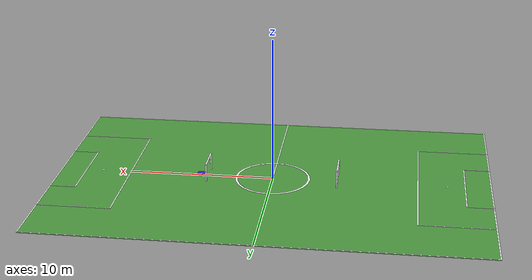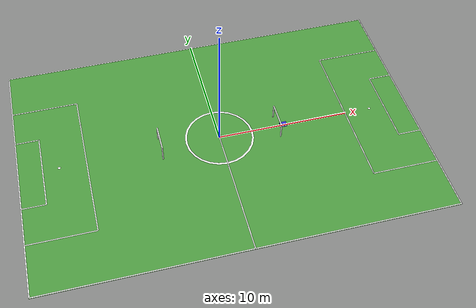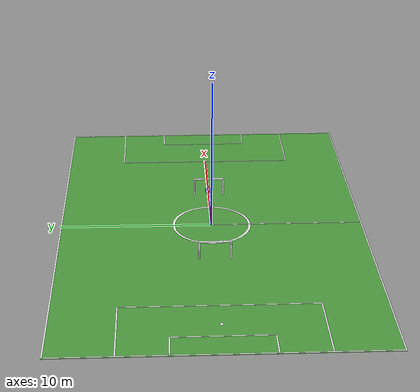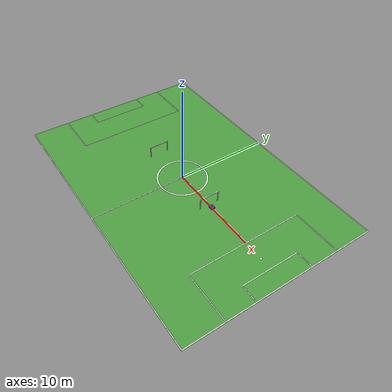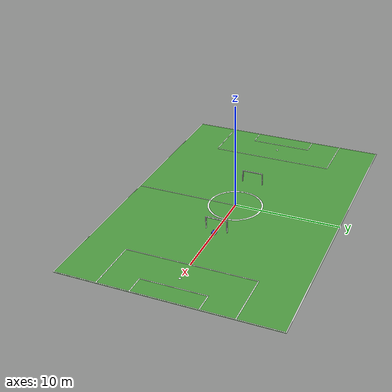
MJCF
<mujoco model="robosoccer">
  <compiler angle="degree" autolimits="true"/>
  <option timestep="0.002" gravity="0 0 -9.81" integrator="RK4"/>

  <asset>
    <texture name="grass_tex" type="2d" file="assets/grass.png"/>
    <material name="grass_mat" texture="grass_tex" texrepeat="50 35" rgba="1 1 1 1" emission="0.15"/>
    <material name="line_white" rgba="1 1 1 1"/>
    <material name="ball_mat" rgba="1 1 1 1" specular="0.2" shininess="0.1"/>
  </asset>

  <worldbody>
    <camera name="field_cam" pos="0 -30 40" quat="0.7 0 0 0.7"/>
    <light name="top" pos="0 0 30"/>

<!-- 1) Hard collision ground (invisible) -->
<geom name="ground_collision" type="plane" pos="0 0 0" size="15 10 1"
      rgba="1 1 1 0"
      condim="3"
      friction="1.0 0.002 0.004"
      priority="2"
      solref="0.01 1.5"
      solimp="0.9 0.95 0.001"/>

<!-- 2) Visual grass decal (no collisions), lifted to avoid z-fighting -->
<geom name="field_visual" type="plane" pos="0 0 0.004" size="15 10 1"
      material="grass_mat"
      contype="0" conaffinity="0"
      priority="1"/>

    <!-- ================= FIELD LINES (non-colliding) ================= -->
    <body name="lines" pos="0 0 0">
      <geom name="touch_top"    type="box" pos="0   9.96 0.01" size="15   0.04 0.002" material="line_white" contype="0" conaffinity="0"/>
      <geom name="touch_bottom" type="box" pos="0  -9.96 0.01" size="15   0.04 0.002" material="line_white" contype="0" conaffinity="0"/>
      <geom name="goal_left"    type="box" pos="-14.96 0   0.01" size="0.04 10   0.002" material="line_white" contype="0" conaffinity="0"/>
      <geom name="goal_right"   type="box" pos=" 14.96 0   0.01" size="0.04 10   0.002" material="line_white" contype="0" conaffinity="0"/>
      <geom name="halfway" type="box" pos="0 0 0.01" size="0.04 10 0.002" material="line_white" contype="0" conaffinity="0"/>

      <!-- Center circle hollow ring -->
      <geom name="center_outer" type="cylinder" pos="0 0 0.0105" size="2.6 0.0005" material="line_white" contype="0" conaffinity="0"/>
      <geom name="center_inner_grass" type="cylinder" pos="0 0 0.0112" size="2.45 0.0007" material="grass_mat" contype="0" conaffinity="0"/>
      <geom name="center_spot" type="cylinder" pos="0 0 0.0118" size="0.1 0.0007" material="line_white" contype="0" conaffinity="0"/>

      <geom name="pen_spot_L" type="cylinder" pos="-12 0 0.011" axisangle="1 0 0 0" size="0.1 0.001" material="line_white" contype="0" conaffinity="0"/>
      <geom name="pen_spot_R" type="cylinder" pos=" 12 0 0.011" axisangle="1 0 0 0" size="0.1 0.001" material="line_white" contype="0" conaffinity="0"/>

      <!-- Penalty areas -->
      <geom type="box" pos="-12.5  6.0 0.01" size="2.5 0.04 0.002" material="line_white" contype="0" conaffinity="0"/>
      <geom type="box" pos="-12.5 -6.0 0.01" size="2.5 0.04 0.002" material="line_white" contype="0" conaffinity="0"/>
      <geom type="box" pos="-10.0  0.0 0.01" size="0.04 6.0 0.002" material="line_white" contype="0" conaffinity="0"/>
      <geom type="box" pos=" 12.5  6.0 0.01" size="2.5 0.04 0.002" material="line_white" contype="0" conaffinity="0"/>
      <geom type="box" pos=" 12.5 -6.0 0.01" size="2.5 0.04 0.002" material="line_white" contype="0" conaffinity="0"/>
      <geom type="box" pos=" 10.0  0.0 0.01" size="0.04 6.0 0.002" material="line_white" contype="0" conaffinity="0"/>

      <!-- Goal boxes -->
      <geom type="box" pos="-14.1  3.0 0.01" size="0.9 0.04 0.002" material="line_white" contype="0" conaffinity="0"/>
      <geom type="box" pos="-14.1 -3.0 0.01" size="0.9 0.04 0.002" material="line_white" contype="0" conaffinity="0"/>
      <geom type="box" pos="-13.2  0.0 0.01" size="0.04 3.0 0.002" material="line_white" contype="0" conaffinity="0"/>
      <geom type="box" pos=" 14.1  3.0 0.01" size="0.9 0.04 0.002" material="line_white" contype="0" conaffinity="0"/>
      <geom type="box" pos=" 14.1 -3.0 0.01" size="0.9 0.04 0.002" material="line_white" contype="0" conaffinity="0"/>
      <geom type="box" pos=" 13.2  0.0 0.01" size="0.04 3.0 0.002" material="line_white" contype="0" conaffinity="0"/>
    </body>
    <!-- ================= END FIELD LINES ================= -->

    <!-- Goals (unchanged) -->
    <body name="goal_left" pos="-4.5 0 0">
      <geom name="left_post_left"  type="cylinder" pos="0 -1.0 0.6" size="0.05 0.6" rgba="1 1 1 1" mass="0" condim="3" contype="1" conaffinity="1"/>
      <geom name="left_post_right" type="cylinder" pos="0  1.0 0.6" size="0.05 0.6" rgba="1 1 1 1" mass="0" condim="3" contype="1" conaffinity="1"/>
      <geom name="left_crossbar"   type="cylinder" fromto="0 -1.0 1.2 0 1.0 1.2" size="0.05" rgba="1 1 1 1" mass="0" condim="3" contype="1" conaffinity="1"/>
    </body>
    <body name="goal_right" pos="4.5 0 0">
      <geom name="right_post_left"  type="cylinder" pos="0 -1.0 0.6" size="0.05 0.6" rgba="1 1 1 1" mass="0" condim="3" contype="1" conaffinity="1"/>
      <geom name="right_post_right" type="cylinder" pos="0  1.0 0.6" size="0.05 0.6" rgba="1 1 1 1" mass="0" condim="3" contype="1" conaffinity="1"/>
      <geom name="right_crossbar"   type="cylinder" fromto="0 -1.0 1.2 0 1.0 1.2" size="0.05" rgba="1 1 1 1" mass="0" condim="3" contype="1" conaffinity="1"/>
    </body>

    <!-- Ball -->
    <body name="ball" pos="0 0 0.2">
      <freejoint/>
      <geom type="sphere" size="0.11" mass="0.43" material="ball_mat" friction="1.2 0.005 0.002"/>
<!-- camera glued to the ball -->
  <camera name="ball_cam" mode="track" fovy="60" euler="90 90 0"/>
    </body>

  <!-- Example robot (fixed in the world; no joint) -->
  <!-- Example robot (fixed) -->
  <body name="robot" pos="5 0 0.1">
    <geom type="box" size="0.25 0.18 0.08" mass="2.0" rgba="0.2 0.2 0.8 1"/>
    <!-- light that follows the robot -->
    <light name="robot_light" pos="5 0 8" directional="false" diffuse="0.8 0.8 0.8"/>

    <!-- Camera mounted a bit in front & above, looking toward -X (field center) -->
  </body>

  </worldbody>

  <actuator/>
</mujoco>
